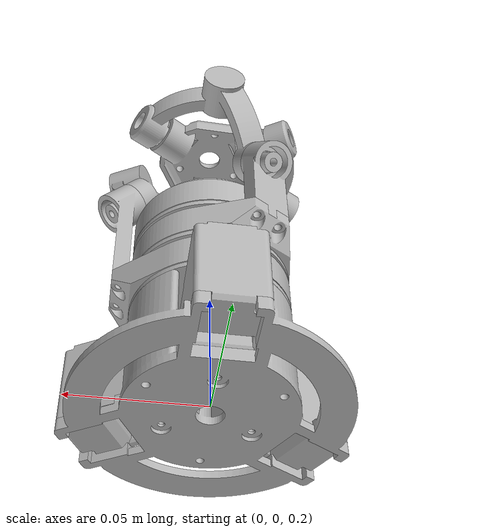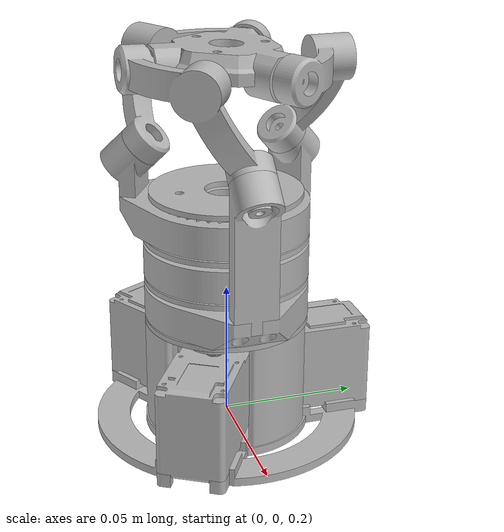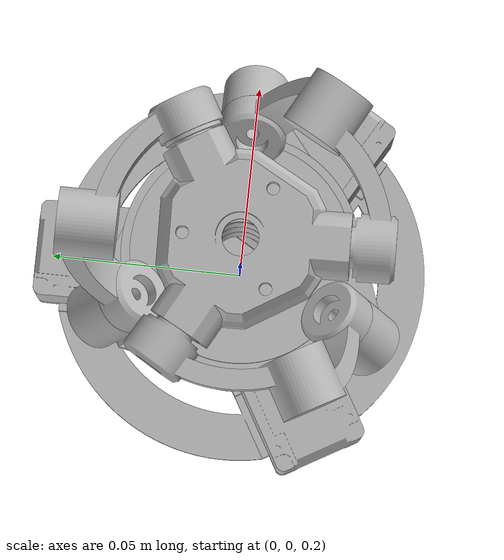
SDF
<sdf version='1.7'>
  <model name='spm_wrist'>
    <joint name='world_joint' type='fixed'>
      <pose relative_to='__model__'>0 0 0.2 1.5708 -0 0</pose>
      <parent>world</parent>
      <child>base_link</child>
    </joint>
    <link name='base_link'>
      <pose relative_to='world_joint'>0 0 0 0 -0 0</pose>
      <inertial>
        <pose>0 0.026986 -1e-06 0 -0 0</pose>
        <mass>0.219161</mass>
        <inertia>
          <ixx>0.000229267</ixx>
          <ixy>1.2267e-09</ixy>
          <ixz>3.27532e-13</ixz>
          <iyy>0.000204178</iyy>
          <iyz>-5.60645e-09</iyz>
          <izz>0.000230267</izz>
        </inertia>
      </inertial>
      <collision name='base_link_collision'>
        <pose>0 0 0 0 -0 0</pose>
        <geometry>
          <mesh>
            <scale>0.001 0.001 0.001</scale>
            <uri>model://spm_wrist_description/meshes/base_link.stl</uri>
          </mesh>
        </geometry>
      </collision>
      <collision name='base_link_fixed_joint_lump__ServoMotor1_collision_1'>
        <pose>0 0 0 0 -0 0</pose>
        <geometry>
          <mesh>
            <scale>0.001 0.001 0.001</scale>
            <uri>model://spm_wrist_description/meshes/servo_motor_v2_1.stl</uri>
          </mesh>
        </geometry>
      </collision>
      <collision name='base_link_fixed_joint_lump__Bottom1_collision_2'>
        <pose>0 0 0 0 -0 0</pose>
        <geometry>
          <mesh>
            <scale>0.001 0.001 0.001</scale>
            <uri>model://spm_wrist_description/meshes/Bottom_v2_1.stl</uri>
          </mesh>
        </geometry>
      </collision>
      <collision name='base_link_fixed_joint_lump__Bottom2_collision_3'>
        <pose>0 0 0 0 -0 0</pose>
        <geometry>
          <mesh>
            <scale>0.001 0.001 0.001</scale>
            <uri>model://spm_wrist_description/meshes/Bottom_v2_2.stl</uri>
          </mesh>
        </geometry>
      </collision>
      <collision name='base_link_fixed_joint_lump__Bottom3_collision_4'>
        <pose>0 0 0 0 -0 0</pose>
        <geometry>
          <mesh>
            <scale>0.001 0.001 0.001</scale>
            <uri>model://spm_wrist_description/meshes/Bottom_v2_3.stl</uri>
          </mesh>
        </geometry>
      </collision>
      <collision name='base_link_fixed_joint_lump__Top_collision_5'>
        <pose>0 0 0 0 -0 0</pose>
        <geometry>
          <mesh>
            <scale>0.001 0.001 0.001</scale>
            <uri>model://spm_wrist_description/meshes/Top_v2_1.stl</uri>
          </mesh>
        </geometry>
      </collision>
      <collision name='base_link_fixed_joint_lump__ServoMotor2_collision_6'>
        <pose>0 0 0 0 -0 0</pose>
        <geometry>
          <mesh>
            <scale>0.001 0.001 0.001</scale>
            <uri>model://spm_wrist_description/meshes/servo_motor_v2_2.stl</uri>
          </mesh>
        </geometry>
      </collision>
      <collision name='base_link_fixed_joint_lump__ServoMotor3_collision_7'>
        <pose>0 0 0 0 -0 0</pose>
        <geometry>
          <mesh>
            <scale>0.001 0.001 0.001</scale>
            <uri>model://spm_wrist_description/meshes/servo_motor_v2_3.stl</uri>
          </mesh>
        </geometry>
      </collision>
      <visual name='base_link_visual'>
        <pose>0 0 0 0 -0 0</pose>
        <geometry>
          <mesh>
            <scale>0.001 0.001 0.001</scale>
            <uri>model://spm_wrist_description/meshes/base_link.stl</uri>
          </mesh>
        </geometry>
      </visual>
      <visual name='base_link_fixed_joint_lump__ServoMotor1_visual_1'>
        <pose>0 0 0 0 -0 0</pose>
        <geometry>
          <mesh>
            <scale>0.001 0.001 0.001</scale>
            <uri>model://spm_wrist_description/meshes/servo_motor_v2_1.stl</uri>
          </mesh>
        </geometry>
      </visual>
      <visual name='base_link_fixed_joint_lump__Bottom1_visual_2'>
        <pose>0 0 0 0 -0 0</pose>
        <geometry>
          <mesh>
            <scale>0.001 0.001 0.001</scale>
            <uri>model://spm_wrist_description/meshes/Bottom_v2_1.stl</uri>
          </mesh>
        </geometry>
      </visual>
      <visual name='base_link_fixed_joint_lump__Bottom2_visual_3'>
        <pose>0 0 0 0 -0 0</pose>
        <geometry>
          <mesh>
            <scale>0.001 0.001 0.001</scale>
            <uri>model://spm_wrist_description/meshes/Bottom_v2_2.stl</uri>
          </mesh>
        </geometry>
      </visual>
      <visual name='base_link_fixed_joint_lump__Bottom3_visual_4'>
        <pose>0 0 0 0 -0 0</pose>
        <geometry>
          <mesh>
            <scale>0.001 0.001 0.001</scale>
            <uri>model://spm_wrist_description/meshes/Bottom_v2_3.stl</uri>
          </mesh>
        </geometry>
      </visual>
      <visual name='base_link_fixed_joint_lump__Top_visual_5'>
        <pose>0 0 0 0 -0 0</pose>
        <geometry>
          <mesh>
            <scale>0.001 0.001 0.001</scale>
            <uri>model://spm_wrist_description/meshes/Top_v2_1.stl</uri>
          </mesh>
        </geometry>
      </visual>
      <visual name='base_link_fixed_joint_lump__ServoMotor2_visual_6'>
        <pose>0 0 0 0 -0 0</pose>
        <geometry>
          <mesh>
            <scale>0.001 0.001 0.001</scale>
            <uri>model://spm_wrist_description/meshes/servo_motor_v2_2.stl</uri>
          </mesh>
        </geometry>
      </visual>
      <visual name='base_link_fixed_joint_lump__ServoMotor3_visual_7'>
        <pose>0 0 0 0 -0 0</pose>
        <geometry>
          <mesh>
            <scale>0.001 0.001 0.001</scale>
            <uri>model://spm_wrist_description/meshes/servo_motor_v2_3.stl</uri>
          </mesh>
        </geometry>
      </visual>
    </link>
    <joint name='LngSpur_Joint' type='revolute'>
      <pose relative_to='base_link'>-0.015556 0.0352 0.008981 0 -0 0</pose>
      <parent>base_link</parent>
      <child>AxisConnector1</child>
      <axis>
        <xyz>0 -1 0</xyz>
        <limit>
          <lower>-1e+16</lower>
          <upper>1e+16</upper>
        </limit>
        <dynamics>
          <spring_reference>0</spring_reference>
          <spring_stiffness>0</spring_stiffness>
        </dynamics>
      </axis>
    </joint>
    <link name='AxisConnector1'>
      <pose relative_to='LngSpur_Joint'>0 0 0 0 -0 0</pose>
      <inertial>
        <pose>0 0.011097 0 0 -0 0</pose>
        <mass>0.00633253</mass>
        <inertia>
          <ixx>9.41591e-07</ixx>
          <ixy>3.45384e-18</ixy>
          <ixz>3.09659e-29</ixz>
          <iyy>1.5336e-07</iyy>
          <iyz>-7.68482e-18</iyz>
          <izz>9.41591e-07</izz>
        </inertia>
      </inertial>
      <collision name='AxisConnector1_collision'>
        <pose>0.015556 -0.0352 -0.008981 0 -0 0</pose>
        <geometry>
          <mesh>
            <scale>0.001 0.001 0.001</scale>
            <uri>model://spm_wrist_description/meshes/AxisConnector_v3_1.stl</uri>
          </mesh>
        </geometry>
      </collision>
      <collision name='AxisConnector1_fixed_joint_lump__LngSpur_collision_1'>
        <pose>0.015556 -0.0352 -0.008981 0 -0 0</pose>
        <geometry>
          <mesh>
            <scale>0.001 0.001 0.001</scale>
            <uri>model://spm_wrist_description/meshes/LngSpur_v2_1.stl</uri>
          </mesh>
        </geometry>
      </collision>
      <visual name='AxisConnector1_visual'>
        <pose>0.015556 -0.0352 -0.008981 0 -0 0</pose>
        <geometry>
          <mesh>
            <scale>0.001 0.001 0.001</scale>
            <uri>model://spm_wrist_description/meshes/AxisConnector_v3_1.stl</uri>
          </mesh>
        </geometry>
      </visual>
      <visual name='AxisConnector1_fixed_joint_lump__LngSpur_visual_1'>
        <pose>0.015556 -0.0352 -0.008981 0 -0 0</pose>
        <geometry>
          <mesh>
            <scale>0.001 0.001 0.001</scale>
            <uri>model://spm_wrist_description/meshes/LngSpur_v2_1.stl</uri>
          </mesh>
        </geometry>
      </visual>
    </link>
    <joint name='Revolute13' type='revolute'>
      <pose relative_to='base_link'>0 0.0405 0 0 -0 0</pose>
      <parent>base_link</parent>
      <child>Ring1</child>
      <axis>
        <xyz>0 1 0</xyz>
        <limit>
          <lower>-1e+16</lower>
          <upper>1e+16</upper>
        </limit>
        <dynamics>
          <spring_reference>0</spring_reference>
          <spring_stiffness>0</spring_stiffness>
        </dynamics>
      </axis>
    </joint>
    <link name='Ring1'>
      <pose relative_to='Revolute13'>0 0 0 0 -0 0</pose>
      <inertial>
        <pose>0.014553 0.017205 9e-06 0 -0 0</pose>
        <mass>0.0160866</mass>
        <inertia>
          <ixx>8.19026e-06</ixx>
          <ixy>-3.10905e-06</ixy>
          <ixz>-1.42878e-09</ixz>
          <iyy>1.20299e-05</iyy>
          <iyz>-1.4661e-09</iyz>
          <izz>1.22202e-05</izz>
        </inertia>
      </inertial>
      <collision name='Ring1_collision'>
        <pose>0 -0.0405 0 0 -0 0</pose>
        <geometry>
          <mesh>
            <scale>0.001 0.001 0.001</scale>
            <uri>model://spm_wrist_description/meshes/Ring_v2_1.stl</uri>
          </mesh>
        </geometry>
      </collision>
      <collision name='Ring1_fixed_joint_lump__LongArm_collision_1'>
        <pose>0 -0.0405 0 0 -0 0</pose>
        <geometry>
          <mesh>
            <scale>0.001 0.001 0.001</scale>
            <uri>model://spm_wrist_description/meshes/LongArm_v2_1.stl</uri>
          </mesh>
        </geometry>
      </collision>
      <visual name='Ring1_visual'>
        <pose>0 -0.0405 0 0 -0 0</pose>
        <geometry>
          <mesh>
            <scale>0.001 0.001 0.001</scale>
            <uri>model://spm_wrist_description/meshes/Ring_v2_1.stl</uri>
          </mesh>
        </geometry>
      </visual>
      <visual name='Ring1_fixed_joint_lump__LongArm_visual_1'>
        <pose>0 -0.0405 0 0 -0 0</pose>
        <geometry>
          <mesh>
            <scale>0.001 0.001 0.001</scale>
            <uri>model://spm_wrist_description/meshes/LongArm_v2_1.stl</uri>
          </mesh>
        </geometry>
      </visual>
    </link>
    <joint name='PlatformSupportLink1_Joint' type='revolute'>
      <pose relative_to='Ring1'>0.031815 0.061098 0 0 -0 0</pose>
      <parent>Ring1</parent>
      <child>PlatformSupportLink1</child>
      <axis>
        <xyz>-0.707107 0.707107 0</xyz>
        <limit>
          <lower>-1e+16</lower>
          <upper>1e+16</upper>
        </limit>
        <dynamics>
          <spring_reference>0</spring_reference>
          <spring_stiffness>0</spring_stiffness>
        </dynamics>
      </axis>
    </joint>
    <link name='PlatformSupportLink1'>
      <pose relative_to='PlatformSupportLink1_Joint'>0 0 0 0 -0 0</pose>
      <inertial>
        <pose>-0.008186 0.023544 0.017143 0 -0 0</pose>
        <mass>0.0101513</mass>
        <inertia>
          <ixx>3e-06</ixx>
          <ixy>1e-06</ixy>
          <ixz>1e-06</ixz>
          <iyy>3e-06</iyy>
          <iyz>-1e-06</iyz>
          <izz>4e-06</izz>
        </inertia>
      </inertial>
      <collision name='PlatformSupportLink1_collision'>
        <pose>-0.031815 -0.101598 0 0 -0 0</pose>
        <geometry>
          <mesh>
            <scale>0.001 0.001 0.001</scale>
            <uri>model://spm_wrist_description/meshes/PlatformSupportLink_v2_1.stl</uri>
          </mesh>
        </geometry>
      </collision>
      <visual name='PlatformSupportLink1_visual'>
        <pose>-0.031815 -0.101598 0 0 -0 0</pose>
        <geometry>
          <mesh>
            <scale>0.001 0.001 0.001</scale>
            <uri>model://spm_wrist_description/meshes/PlatformSupportLink_v2_1.stl</uri>
          </mesh>
        </geometry>
      </visual>
    </link>
    <joint name='Platform_Joint1' type='revolute'>
      <pose relative_to='PlatformSupportLink1'>-0.03093 0.032415 0.02748 0 -0 0</pose>
      <parent>PlatformSupportLink1</parent>
      <child>Platform</child>
      <axis>
        <xyz>-0.027239 -0.027239 -0.999258</xyz>
        <limit>
          <lower>-1e+16</lower>
          <upper>1e+16</upper>
        </limit>
        <dynamics>
          <spring_reference>0</spring_reference>
          <spring_stiffness>0</spring_stiffness>
        </dynamics>
      </axis>
    </joint>
    <link name='Platform'>
      <pose relative_to='Platform_Joint1'>0 0 0 0 -0 0</pose>
      <inertial>
        <pose>-0.00075 0.001476 -0.02754 0 -0 0</pose>
        <mass>0.00869409</mass>
        <inertia>
          <ixx>2e-06</ixx>
          <ixy>0</ixy>
          <ixz>0</ixz>
          <iyy>3e-06</iyy>
          <iyz>0</iyz>
          <izz>2e-06</izz>
        </inertia>
      </inertial>
      <collision name='Platform_collision'>
        <pose>-0.000885 -0.134013 -0.02748 0 -0 0</pose>
        <geometry>
          <mesh>
            <scale>0.001 0.001 0.001</scale>
            <uri>model://spm_wrist_description/meshes/Platform_v2_1.stl</uri>
          </mesh>
        </geometry>
      </collision>
      <visual name='Platform_visual'>
        <pose>-0.000885 -0.134013 -0.02748 0 -0 0</pose>
        <geometry>
          <mesh>
            <scale>0.001 0.001 0.001</scale>
            <uri>model://spm_wrist_description/meshes/Platform_v2_1.stl</uri>
          </mesh>
        </geometry>
      </visual>
    </link>
    <joint name='Revolute14' type='revolute'>
      <pose relative_to='base_link'>0 0.0565 0 0 -0 0</pose>
      <parent>base_link</parent>
      <child>Ring2</child>
      <axis>
        <xyz>0 1 0</xyz>
        <limit>
          <lower>-1e+16</lower>
          <upper>1e+16</upper>
        </limit>
        <dynamics>
          <spring_reference>0</spring_reference>
          <spring_stiffness>0</spring_stiffness>
        </dynamics>
      </axis>
    </joint>
    <link name='Ring2'>
      <pose relative_to='Revolute14'>0 0 0 0 -0 0</pose>
      <inertial>
        <pose>-0.006162 0.012962 -0.010688 0 -0 0</pose>
        <mass>0.0144644</mass>
        <inertia>
          <ixx>8.05433e-06</ixx>
          <ixy>8.71828e-07</ixy>
          <ixz>-2.00672e-06</ixz>
          <iyy>1.1326e-05</iyy>
          <iyz>1.5115e-06</iyz>
          <izz>5.88964e-06</izz>
        </inertia>
      </inertial>
      <collision name='Ring2_collision'>
        <pose>0 -0.0565 0 0 -0 0</pose>
        <geometry>
          <mesh>
            <scale>0.001 0.001 0.001</scale>
            <uri>model://spm_wrist_description/meshes/Ring_v2_2.stl</uri>
          </mesh>
        </geometry>
      </collision>
      <collision name='Ring2_fixed_joint_lump__MiddleArm_collision_1'>
        <pose>0 -0.0565 0 0 -0 0</pose>
        <geometry>
          <mesh>
            <scale>0.001 0.001 0.001</scale>
            <uri>model://spm_wrist_description/meshes/MiddleArm_v2_1.stl</uri>
          </mesh>
        </geometry>
      </collision>
      <visual name='Ring2_visual'>
        <pose>0 -0.0565 0 0 -0 0</pose>
        <geometry>
          <mesh>
            <scale>0.001 0.001 0.001</scale>
            <uri>model://spm_wrist_description/meshes/Ring_v2_2.stl</uri>
          </mesh>
        </geometry>
      </visual>
      <visual name='Ring2_fixed_joint_lump__MiddleArm_visual_1'>
        <pose>0 -0.0565 0 0 -0 0</pose>
        <geometry>
          <mesh>
            <scale>0.001 0.001 0.001</scale>
            <uri>model://spm_wrist_description/meshes/MiddleArm_v2_1.stl</uri>
          </mesh>
        </geometry>
      </visual>
    </link>
    <joint name='PlatformSupportLink2_Joint' type='revolute'>
      <pose relative_to='Ring2'>-0.015908 0.045098 -0.027553 0 -0 0</pose>
      <parent>Ring2</parent>
      <child>PlatformSupportLink2</child>
      <axis>
        <xyz>0.353553 0.707107 0.612372</xyz>
        <limit>
          <lower>-1e+16</lower>
          <upper>1e+16</upper>
        </limit>
        <dynamics>
          <spring_reference>0</spring_reference>
          <spring_stiffness>0</spring_stiffness>
        </dynamics>
      </axis>
    </joint>
    <link name='PlatformSupportLink2'>
      <pose relative_to='PlatformSupportLink2_Joint'>0 0 0 0 -0 0</pose>
      <inertial>
        <pose>0.019527 0.023071 -0.001275 0 -0 0</pose>
        <mass>0.0101513</mass>
        <inertia>
          <ixx>2.757e-06</ixx>
          <ixy>-1.541e-06</ixy>
          <ixz>-8.53e-07</ixz>
          <iyy>3.533e-06</iyy>
          <iyz>1e-08</iyz>
          <izz>4.447e-06</izz>
        </inertia>
      </inertial>
      <collision name='PlatformSupportLink2_collision'>
        <pose>0.015908 -0.101598 0.027553 0 -0 0</pose>
        <geometry>
          <mesh>
            <scale>0.001 0.001 0.001</scale>
            <uri>model://spm_wrist_description/meshes/PlatformSupportLink_v2_2.stl</uri>
          </mesh>
        </geometry>
      </collision>
      <visual name='PlatformSupportLink2_visual'>
        <pose>0.015908 -0.101598 0.027553 0 -0 0</pose>
        <geometry>
          <mesh>
            <scale>0.001 0.001 0.001</scale>
            <uri>model://spm_wrist_description/meshes/PlatformSupportLink_v2_2.stl</uri>
          </mesh>
        </geometry>
      </visual>
    </link>
    <joint name='Revolute15' type='revolute'>
      <pose relative_to='base_link'>0 0.0725 0 0 -0 0</pose>
      <parent>base_link</parent>
      <child>Ring3</child>
      <axis>
        <xyz>0 1 0</xyz>
        <limit>
          <lower>-1e+16</lower>
          <upper>1e+16</upper>
        </limit>
        <dynamics>
          <spring_reference>0</spring_reference>
          <spring_stiffness>0</spring_stiffness>
        </dynamics>
      </axis>
    </joint>
    <link name='Ring3'>
      <pose relative_to='Revolute15'>0 0 0 0 -0 0</pose>
      <inertial>
        <pose>-0.004909 0.009778 0.00849 0 -0 0</pose>
        <mass>0.012968</mass>
        <inertia>
          <ixx>6.48103e-06</ixx>
          <ixy>3.58973e-07</ixy>
          <ixz>1.66033e-06</ixz>
          <iyy>1.05246e-05</iyy>
          <iyz>-6.2147e-07</iyz>
          <izz>4.71927e-06</izz>
        </inertia>
      </inertial>
      <collision name='Ring3_collision'>
        <pose>0 -0.0725 0 0 -0 0</pose>
        <geometry>
          <mesh>
            <scale>0.001 0.001 0.001</scale>
            <uri>model://spm_wrist_description/meshes/Ring_v2_3.stl</uri>
          </mesh>
        </geometry>
      </collision>
      <collision name='Ring3_fixed_joint_lump__ShortArm_collision_1'>
        <pose>0 -0.0725 0 0 -0 0</pose>
        <geometry>
          <mesh>
            <scale>0.001 0.001 0.001</scale>
            <uri>model://spm_wrist_description/meshes/ShortArm_v2_1.stl</uri>
          </mesh>
        </geometry>
      </collision>
      <visual name='Ring3_visual'>
        <pose>0 -0.0725 0 0 -0 0</pose>
        <geometry>
          <mesh>
            <scale>0.001 0.001 0.001</scale>
            <uri>model://spm_wrist_description/meshes/Ring_v2_3.stl</uri>
          </mesh>
        </geometry>
      </visual>
      <visual name='Ring3_fixed_joint_lump__ShortArm_visual_1'>
        <pose>0 -0.0725 0 0 -0 0</pose>
        <geometry>
          <mesh>
            <scale>0.001 0.001 0.001</scale>
            <uri>model://spm_wrist_description/meshes/ShortArm_v2_1.stl</uri>
          </mesh>
        </geometry>
      </visual>
    </link>
    <joint name='PlatformSupportLink3_Joint' type='revolute'>
      <pose relative_to='Ring3'>-0.015906 0.029098 0.027554 0 -0 0</pose>
      <parent>Ring3</parent>
      <child>PlatformSupportLink3</child>
      <axis>
        <xyz>-0.353553 -0.707107 0.612372</xyz>
        <limit>
          <lower>-1e+16</lower>
          <upper>1e+16</upper>
        </limit>
        <dynamics>
          <spring_reference>0</spring_reference>
          <spring_stiffness>0</spring_stiffness>
        </dynamics>
      </axis>
    </joint>
    <link name='PlatformSupportLink3'>
      <pose relative_to='PlatformSupportLink3_Joint'>0 0 0 0 -0 0</pose>
      <inertial>
        <pose>-0.010894 0.022944 -0.016435 0 -0 0</pose>
        <mass>0.0101513</mass>
        <inertia>
          <ixx>4.758e-06</ixx>
          <ixy>7.7e-07</ixy>
          <ixz>-2.99e-07</ixz>
          <iyy>3.552e-06</iyy>
          <iyz>1.33e-06</iyz>
          <izz>2.427e-06</izz>
        </inertia>
      </inertial>
      <collision name='PlatformSupportLink3_collision'>
        <pose>0.015906 -0.101598 -0.027554 0 -0 0</pose>
        <geometry>
          <mesh>
            <scale>0.001 0.001 0.001</scale>
            <uri>model://spm_wrist_description/meshes/PlatformSupportLink_v2_3.stl</uri>
          </mesh>
        </geometry>
      </collision>
      <visual name='PlatformSupportLink3_visual'>
        <pose>0.015906 -0.101598 -0.027554 0 -0 0</pose>
        <geometry>
          <mesh>
            <scale>0.001 0.001 0.001</scale>
            <uri>model://spm_wrist_description/meshes/PlatformSupportLink_v2_3.stl</uri>
          </mesh>
        </geometry>
      </visual>
    </link>
    <joint name='SrtSpur_Joint' type='revolute'>
      <pose relative_to='base_link'>0.015556 0.0352 0.008981 0 -0 0</pose>
      <parent>base_link</parent>
      <child>AxisConnector2</child>
      <axis>
        <xyz>0 1 0</xyz>
        <limit>
          <lower>-1e+16</lower>
          <upper>1e+16</upper>
        </limit>
        <dynamics>
          <spring_reference>0</spring_reference>
          <spring_stiffness>0</spring_stiffness>
        </dynamics>
      </axis>
    </joint>
    <link name='AxisConnector2'>
      <pose relative_to='SrtSpur_Joint'>0 0 0 0 -0 0</pose>
      <inertial>
        <pose>-3.5e-05 0.009749 0 0 -0 0</pose>
        <mass>0.00633253</mass>
        <inertia>
          <ixx>6.94409e-07</ixx>
          <ixy>2.97159e-09</ixy>
          <ixz>-4.0974e-20</ixz>
          <iyy>1.53374e-07</iyy>
          <iyz>8.40773e-18</iyz>
          <izz>6.94424e-07</izz>
        </inertia>
      </inertial>
      <collision name='AxisConnector2_collision'>
        <pose>-0.015556 -0.0352 -0.008981 0 -0 0</pose>
        <geometry>
          <mesh>
            <scale>0.001 0.001 0.001</scale>
            <uri>model://spm_wrist_description/meshes/AxisConnector_v3_2.stl</uri>
          </mesh>
        </geometry>
      </collision>
      <collision name='AxisConnector2_fixed_joint_lump__SrtSpur_collision_1'>
        <pose>-0.015556 -0.0352 -0.008981 0 -0 0</pose>
        <geometry>
          <mesh>
            <scale>0.001 0.001 0.001</scale>
            <uri>model://spm_wrist_description/meshes/SrtSpur_v2_1.stl</uri>
          </mesh>
        </geometry>
      </collision>
      <visual name='AxisConnector2_visual'>
        <pose>-0.015556 -0.0352 -0.008981 0 -0 0</pose>
        <geometry>
          <mesh>
            <scale>0.001 0.001 0.001</scale>
            <uri>model://spm_wrist_description/meshes/AxisConnector_v3_2.stl</uri>
          </mesh>
        </geometry>
      </visual>
      <visual name='AxisConnector2_fixed_joint_lump__SrtSpur_visual_1'>
        <pose>-0.015556 -0.0352 -0.008981 0 -0 0</pose>
        <geometry>
          <mesh>
            <scale>0.001 0.001 0.001</scale>
            <uri>model://spm_wrist_description/meshes/SrtSpur_v2_1.stl</uri>
          </mesh>
        </geometry>
      </visual>
    </link>
    <joint name='MidSpur_Joint' type='revolute'>
      <pose relative_to='base_link'>0 0.0352 -0.017963 0 -0 0</pose>
      <parent>base_link</parent>
      <child>AxisConnector3</child>
      <axis>
        <xyz>0 1 0</xyz>
        <limit>
          <lower>-1e+16</lower>
          <upper>1e+16</upper>
        </limit>
        <dynamics>
          <spring_reference>0</spring_reference>
          <spring_stiffness>0</spring_stiffness>
        </dynamics>
      </axis>
    </joint>
    <link name='AxisConnector3'>
      <pose relative_to='MidSpur_Joint'>0 0 0 0 -0 0</pose>
      <inertial>
        <pose>-3.5e-05 0.010425 0 0 -0 0</pose>
        <mass>0.00633298</mass>
        <inertia>
          <ixx>8.12973e-07</ixx>
          <ixy>3.24305e-09</ixy>
          <ixz>-1.53132e-13</ixz>
          <iyy>1.53374e-07</iyy>
          <iyz>3.43905e-11</iyz>
          <izz>8.12987e-07</izz>
        </inertia>
      </inertial>
      <collision name='AxisConnector3_collision'>
        <pose>0 -0.0352 0.017963 0 -0 0</pose>
        <geometry>
          <mesh>
            <scale>0.001 0.001 0.001</scale>
            <uri>model://spm_wrist_description/meshes/AxisConnector_v3_3.stl</uri>
          </mesh>
        </geometry>
      </collision>
      <collision name='AxisConnector3_fixed_joint_lump__MidSpur_collision_1'>
        <pose>0 -0.0352 0.017963 0 -0 0</pose>
        <geometry>
          <mesh>
            <scale>0.001 0.001 0.001</scale>
            <uri>model://spm_wrist_description/meshes/MidSpur_v2_1.stl</uri>
          </mesh>
        </geometry>
      </collision>
      <visual name='AxisConnector3_visual'>
        <pose>0 -0.0352 0.017963 0 -0 0</pose>
        <geometry>
          <mesh>
            <scale>0.001 0.001 0.001</scale>
            <uri>model://spm_wrist_description/meshes/AxisConnector_v3_3.stl</uri>
          </mesh>
        </geometry>
      </visual>
      <visual name='AxisConnector3_fixed_joint_lump__MidSpur_visual_1'>
        <pose>0 -0.0352 0.017963 0 -0 0</pose>
        <geometry>
          <mesh>
            <scale>0.001 0.001 0.001</scale>
            <uri>model://spm_wrist_description/meshes/MidSpur_v2_1.stl</uri>
          </mesh>
        </geometry>
      </visual>
    </link>
    <static>0</static>

  </model>
</sdf>
